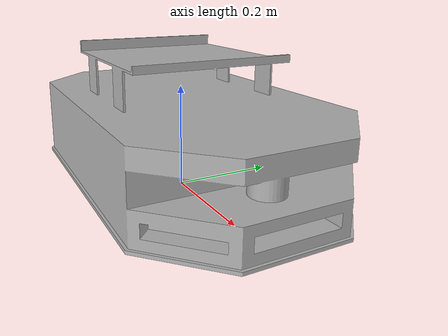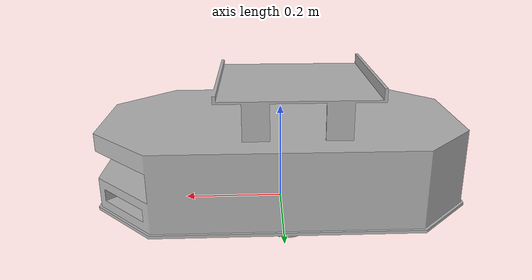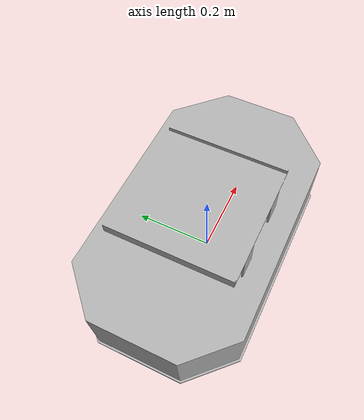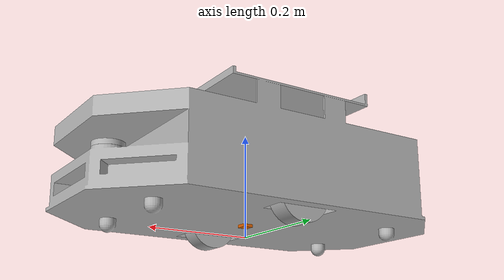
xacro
<?xml version="1.0" ?>
<robot name="nikiro" xmlns:xacro="http://www.ros.org/wiki/xacro">

<xacro:include filename="$(find nikiro_description)/urdf/materials.xacro" />
<xacro:include filename="$(find nikiro_description)/urdf/nikiro.trans" />
<xacro:include filename="$(find nikiro_description)/urdf/nikiro.gazebo" />
  <link name="base_footprint"/>
<link name="base_link">
  <inertial>
    <origin xyz="0.022071318684179705 0.006141506519807233 0.1087701400092451" rpy="0 0 0"/>
    <mass value="38.26171992112548"/>
    <inertia ixx="0.817634" iyy="1.899985" izz="2.269713" ixy="0.001467" iyz="1e-05" ixz="0.027681"/>
  </inertial>
  <visual>
    <origin xyz="0 0 0" rpy="0 0 0"/>
    <geometry>
      <mesh filename="file://$(find nikiro_description)/meshes/base_link.stl" scale="0.001 0.001 0.001"/>
    </geometry>
    <material name="silver"/>
  </visual>
  <collision>
    <origin xyz="0 0 0" rpy="0 0 0"/>
    <geometry>
      <mesh filename="file://$(find nikiro_description)/meshes/base_link.stl" scale="0.001 0.001 0.001"/>
    </geometry>
  </collision>
</link>

<link name="left_wheel">
  <inertial>
    <origin xyz="2.1359294439561582e-07 0.01999977099653047 1.3877787807814457e-17" rpy="0 0 0"/>
    <mass value="2.466150233067987"/>
    <inertia ixx="0.00187" iyy="0.003083" izz="0.00187" ixy="0.0" iyz="0.0" ixz="0.0"/>
  </inertial>
  <visual>
    <origin xyz="0.006289 -0.141289 -0.0505" rpy="0 0 0"/>
    <geometry>
      <mesh filename="file://$(find nikiro_description)/meshes/left_wheel.stl" scale="0.001 0.001 0.001"/>
    </geometry>
    <material name="silver"/>
  </visual>
  <collision>
    <origin xyz="0.006289 -0.141289 -0.0505" rpy="0 0 0"/>
    <geometry>
      <mesh filename="file://$(find nikiro_description)/meshes/left_wheel.stl" scale="0.001 0.001 0.001"/>
    </geometry>
  </collision>
</link>

<link name="right_wheel">
  <inertial>
    <origin xyz="2.1359293878725483e-07 -0.02000021359297019 3.0531133177191805e-16" rpy="0 0 0"/>
    <mass value="2.4661502330679874"/>
    <inertia ixx="0.00187" iyy="0.003083" izz="0.00187" ixy="0.0" iyz="0.0" ixz="0.0"/>
  </inertial>
  <visual>
    <origin xyz="0.006289 0.128711 -0.0505" rpy="0 0 0"/>
    <geometry>
      <mesh filename="file://$(find nikiro_description)/meshes/right_wheel.stl" scale="0.001 0.001 0.001"/>
    </geometry>
    <material name="silver"/>
  </visual>
  <collision>
    <origin xyz="0.006289 0.128711 -0.0505" rpy="0 0 0"/>
    <geometry>
      <mesh filename="file://$(find nikiro_description)/meshes/right_wheel.stl" scale="0.001 0.001 0.001"/>
    </geometry>
  </collision>
</link>

<link name="laser">
  <inertial>
    <origin xyz="2.220446049250313e-16 2.5216220942748686e-08 0.0050000000000000044" rpy="0 0 0"/>
    <mass value="0.2215627689964292"/>
    <inertia ixx="5.2e-05" iyy="5.2e-05" izz="0.0001" ixy="0.0" iyz="-0.0" ixz="-0.0"/>
  </inertial>
  <visual>
    <origin xyz="-0.2825 0.000404 -0.1295" rpy="0 0 0"/>
    <geometry>
      <mesh filename="file://$(find nikiro_description)/meshes/laser.stl" scale="0.001 0.001 0.001"/>
    </geometry>
    <material name="silver"/>
  </visual>
  <collision>
    <origin xyz="-0.2825 0.000404 -0.1295" rpy="0 0 0"/>
    <geometry>
      <mesh filename="file://$(find nikiro_description)/meshes/laser.stl" scale="0.001 0.001 0.001"/>
    </geometry>
  </collision>
</link>

<link name="imu_link">
  <visual>
    <geometry>
      <box size="0.02 0.02 0.02"/>
    </geometry>
  </visual>
</link>

<joint name="left_wheel_joint" type="continuous">
  <origin xyz="-0.006289 0.141289 0.0505" rpy="0 0 0"/>
  <parent link="base_link"/>
  <child link="left_wheel"/>
  <axis xyz="0.0 1.0 -0.0"/>
</joint>

<joint name="right_wheel_joint" type="continuous">
  <origin xyz="-0.006289 -0.128711 0.0505" rpy="0 0 0"/>
  <parent link="base_link"/>
  <child link="right_wheel"/>
  <axis xyz="0.0 1.0 -0.0"/>
</joint>

<joint name="lidar_joint" type="fixed">
  <origin xyz="0.2825 -0.000404 0.1295" rpy="0 0 0"/>
  <parent link="base_link"/>
  <child link="laser"/>
</joint>

<joint name="base_footprint_to_base_link" type="fixed">
  <origin xyz="0 0 0" rpy="0 0 0"/>
  <parent link="base_footprint"/>
  <child link="base_link"/>
</joint>

<joint name="imu_joint" type="fixed">
  <origin xyz="0 0 0.03" rpy="0 0 0"/>
  <parent link="base_link"/>
  <child link="imu_link"/>
</joint>

</robot>

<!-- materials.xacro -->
<robot name="nikiro" xmlns:xacro="http://www.ros.org/wiki/xacro" >

<material name="silver">
  <color rgba="0.700 0.700 0.700 1.000"/>
</material>

</robot>

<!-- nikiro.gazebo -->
<robot name="nikiro" xmlns:xacro="http://www.ros.org/wiki/xacro" >

<xacro:property name="body_color" value="Gazebo/Silver" />

<gazebo>
  <plugin name="control" filename="libgazebo_ros_control.so"/>
</gazebo>
<gazebo reference="base_link">
  <material>${body_color}</material>
  <mu1>0.2</mu1>
  <mu2>0.2</mu2>
  <self_collide>true</self_collide>
  <gravity>true</gravity>
</gazebo>

<gazebo reference="left_wheel_1">
  <material>${body_color}</material>
  <mu1>0.2</mu1>
  <mu2>0.2</mu2>
  <self_collide>true</self_collide>
</gazebo>

<gazebo reference="right_wheel_1">
  <material>${body_color}</material>
  <mu1>0.2</mu1>
  <mu2>0.2</mu2>
  <self_collide>true</self_collide>
</gazebo>

<gazebo reference="lidar_1">
  <material>${body_color}</material>
  <mu1>0.2</mu1>
  <mu2>0.2</mu2>
  <self_collide>true</self_collide>
</gazebo>

</robot>
